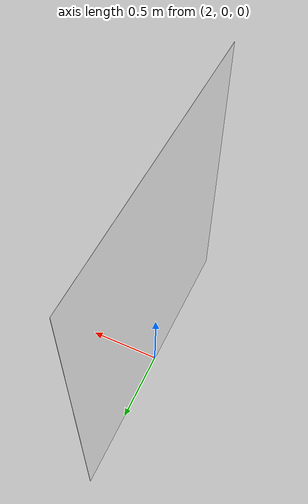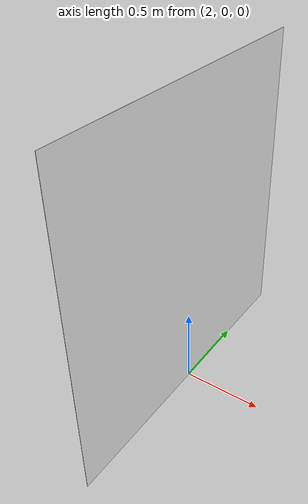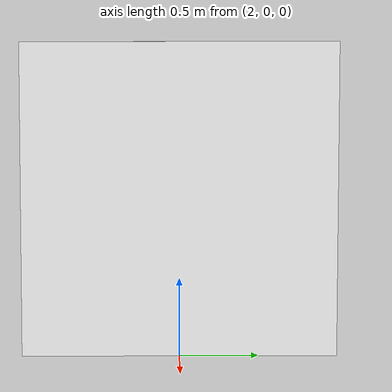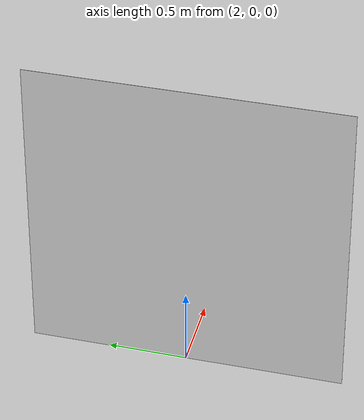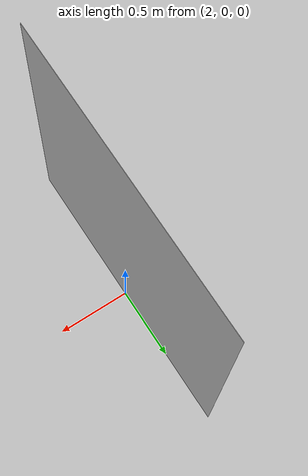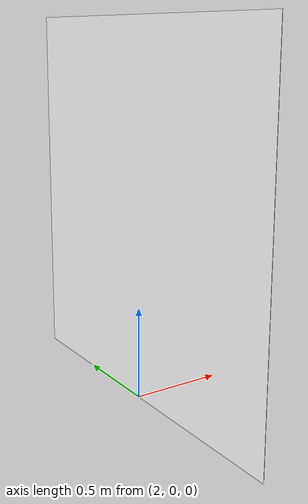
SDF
<?xml version="1.0" ?>
<sdf version="1.10">
  <model name="floating_image">
    <pose>2 0 1 0 0 0</pose>
    <static>true</static>

    <link name="link">

      <visual name="visual">
        <pose>0 0 0 1.5708 0 0</pose>
        <geometry>
          <plane>
            <normal>1 0 0</normal>
            <size>2 2</size>
          </plane>
        </geometry>

		<material>
		  <ambient>1 1 1 1</ambient>
		  <diffuse>1 1 1 1</diffuse>
		  <specular>0 0 0 1</specular>
		  <double_sided>true</double_sided>

		  <pbr>
			<metal>
			  <albedo_map>model://floating_image/materials/textures/image.png</albedo_map>
			  <metalness>0.0</metalness>
			  <roughness>1.0</roughness>
			</metal>
		  </pbr>
		</material>

      </visual>

    </link>
  </model>
</sdf>
